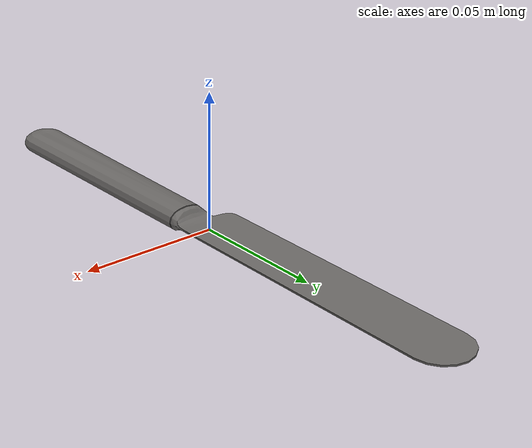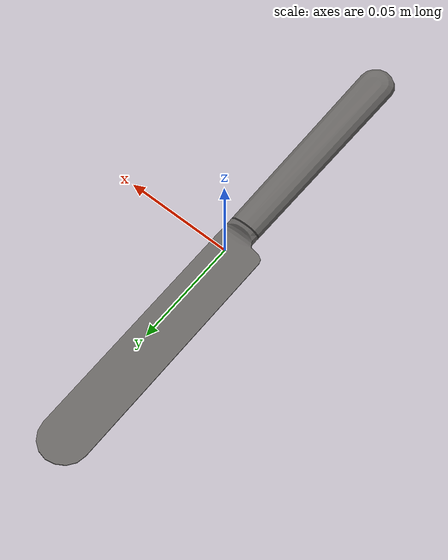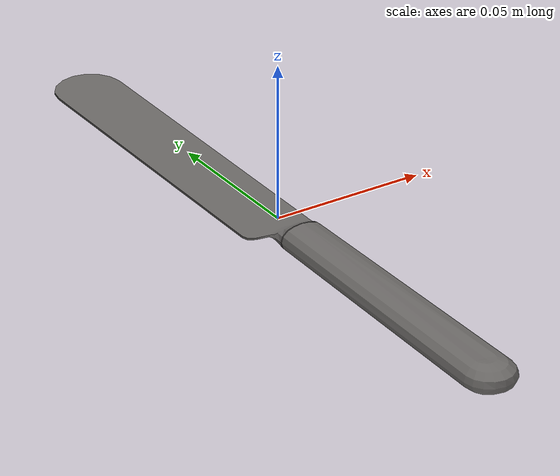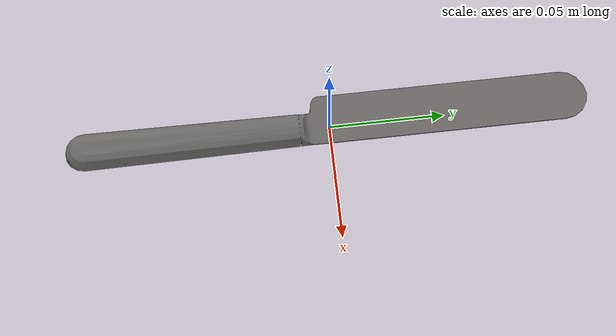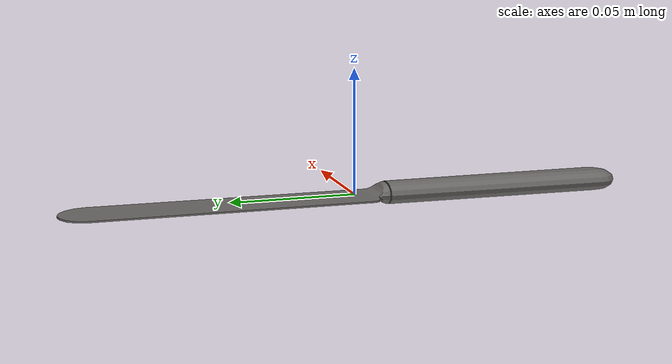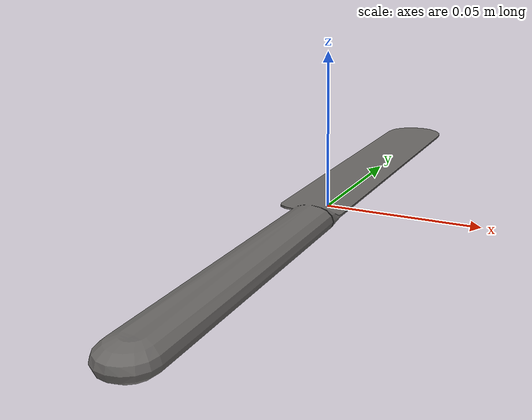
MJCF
<?xml version="1.0" encoding="utf-8"?>
<mujoco model="knife">
  <compiler angle="radian" meshdir="assets" texturedir="assets" autolimits="true"/>
  <asset>
    <mesh file="knife.obj"/>
    <mesh file="knife_collision_001.obj"/>
    <mesh file="knife_collision_002.obj"/>
    <texture type="2d" name="knife" file="knife.png"/>
    <material name="knife" texture="knife" specular="0.9" shininess="0.9" rgba="0.55 0.56 0.58 1"/>
  </asset>
  <default>
    <default class="knife">
      <default class="visual">
        <geom type="mesh" mass="0.032" contype="0" conaffinity="0" group="2" material="knife"/>
      </default>
      <default class="collision">
        <geom type="mesh" mass="0" group="3" solimp="0.98 0.99 0.001" solref="0.004 1"/>
      </default>
    </default>
  </default>
  <worldbody>
    <body name="knife" childclass="knife">
      <geom name="mesh" mesh="knife" class="visual"/>
      <geom name="collider_001" mesh="knife_collision_001" class="collision"/>
      <geom name="collider_002" mesh="knife_collision_002" class="collision"/>
    </body>
  </worldbody>
</mujoco>
